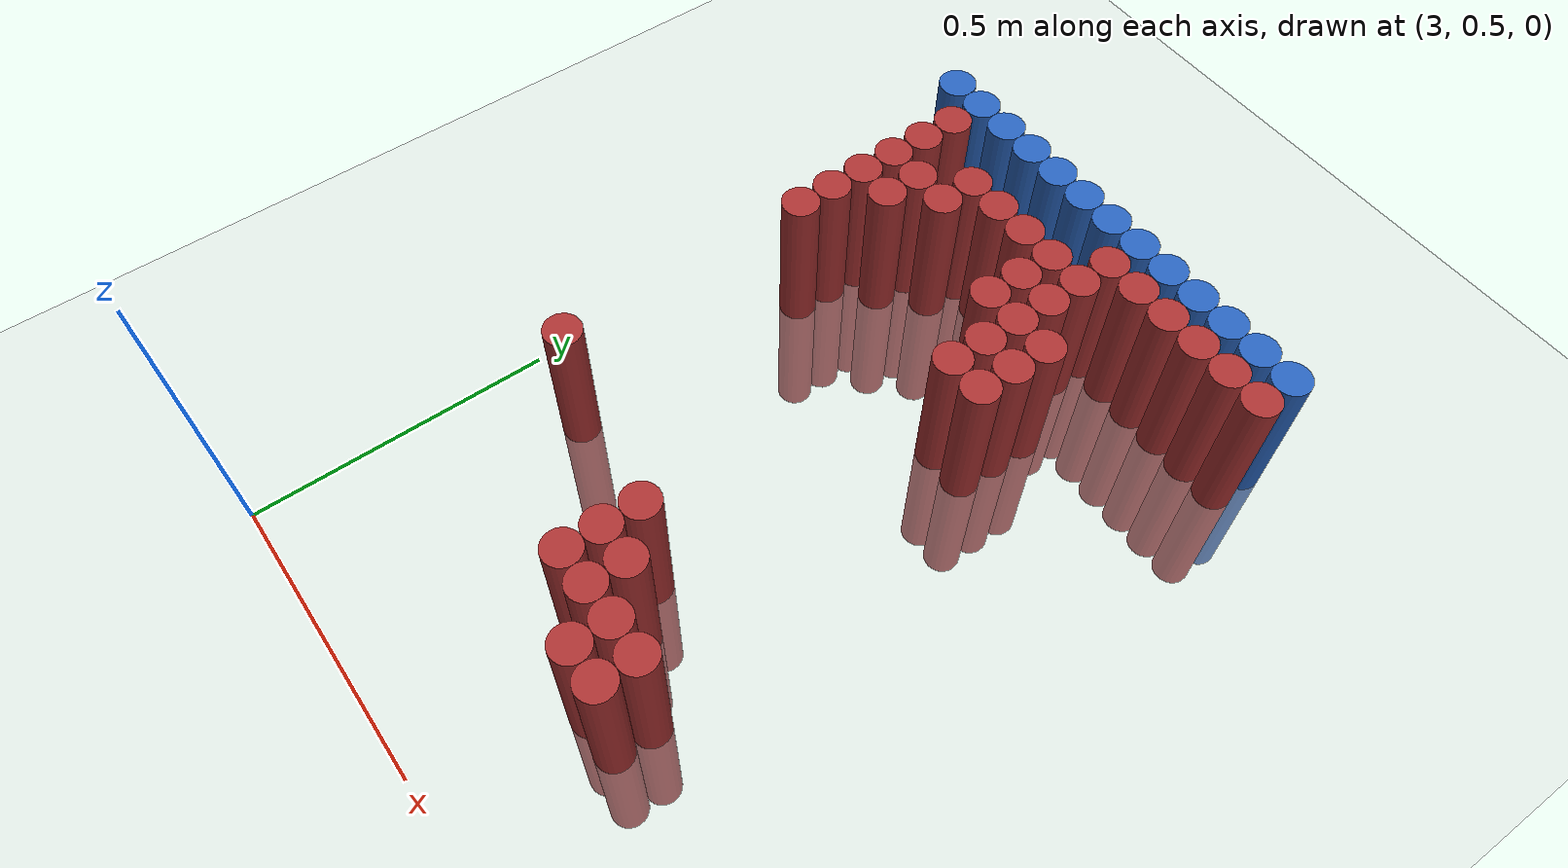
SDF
<sdf version="1.6">
 <world name="default">
  <model name="ground_plane">
   <static>1</static>
   <link name="link">
    <collision name="collision">
     <geometry><plane><normal>0 0 1</normal><size>100 100</size></plane></geometry>
     <surface><friction><ode><mu>100</mu><mu2>50</mu2></ode></friction></surface>
    </collision>
    <visual name="visual">
     <cast_shadows>0</cast_shadows>
     <geometry><plane><normal>0 0 1</normal><size>100 100</size></plane></geometry>
     <material>
      <script><uri>file://media/materials/scripts/gazebo.material</uri><name>Gazebo/Grey</name></script>
     </material>
    </visual>
   </link>
  </model>
  <model name="unit_cylinder_112">
   <static>1</static>
   <pose>3.090000 1.770000 0.000000 0.000000 0.000000 0.000000</pose>
   <link name="link">
    <inertial>
     <mass>1</mass>
     <inertia><ixx>0.145833</ixx><ixy>0</ixy><ixz>0</ixz><iyy>0.145833</iyy><iyz>0</iyz><izz>0.125</izz></inertia>
    </inertial>
    <collision name="collision">
     <geometry><cylinder><radius>0.030000</radius><length>0.5</length></cylinder></geometry>
    </collision>
    <visual name="visual">
     <geometry><cylinder><radius>0.030000</radius><length>0.5</length></cylinder></geometry>
     <material>
      <ambient>0.152000 0.379000 0.720000 1</ambient>
      <diffuse>0.152000 0.379000 0.720000 1</diffuse>
     </material>
     <material>
      <script><name>Gazebo/Grey</name><uri>file://media/materials/scripts/gazebo.material</uri></script>
     </material>
    </visual>
   </link>
  </model>
  <model name="unit_cylinder_113">
   <static>1</static>
   <pose>3.150000 1.770000 0.000000 0.000000 0.000000 0.000000</pose>
   <link name="link">
    <inertial>
     <mass>1</mass>
     <inertia><ixx>0.145833</ixx><ixy>0</ixy><ixz>0</ixz><iyy>0.145833</iyy><iyz>0</iyz><izz>0.125</izz></inertia>
    </inertial>
    <collision name="collision">
     <geometry><cylinder><radius>0.030000</radius><length>0.5</length></cylinder></geometry>
    </collision>
    <visual name="visual">
     <geometry><cylinder><radius>0.030000</radius><length>0.5</length></cylinder></geometry>
     <material>
      <ambient>0.152000 0.379000 0.720000 1</ambient>
      <diffuse>0.152000 0.379000 0.720000 1</diffuse>
     </material>
     <material>
      <script><name>Gazebo/Grey</name><uri>file://media/materials/scripts/gazebo.material</uri></script>
     </material>
    </visual>
   </link>
  </model>
  <model name="unit_cylinder_114">
   <static>1</static>
   <pose>3.210000 1.770000 0.000000 0.000000 0.000000 0.000000</pose>
   <link name="link">
    <inertial>
     <mass>1</mass>
     <inertia><ixx>0.145833</ixx><ixy>0</ixy><ixz>0</ixz><iyy>0.145833</iyy><iyz>0</iyz><izz>0.125</izz></inertia>
    </inertial>
    <collision name="collision">
     <geometry><cylinder><radius>0.030000</radius><length>0.5</length></cylinder></geometry>
    </collision>
    <visual name="visual">
     <geometry><cylinder><radius>0.030000</radius><length>0.5</length></cylinder></geometry>
     <material>
      <ambient>0.152000 0.379000 0.720000 1</ambient>
      <diffuse>0.152000 0.379000 0.720000 1</diffuse>
     </material>
     <material>
      <script><name>Gazebo/Grey</name><uri>file://media/materials/scripts/gazebo.material</uri></script>
     </material>
    </visual>
   </link>
  </model>
  <model name="unit_cylinder_115">
   <static>1</static>
   <pose>3.270000 1.770000 0.000000 0.000000 0.000000 0.000000</pose>
   <link name="link">
    <inertial>
     <mass>1</mass>
     <inertia><ixx>0.145833</ixx><ixy>0</ixy><ixz>0</ixz><iyy>0.145833</iyy><iyz>0</iyz><izz>0.125</izz></inertia>
    </inertial>
    <collision name="collision">
     <geometry><cylinder><radius>0.030000</radius><length>0.5</length></cylinder></geometry>
    </collision>
    <visual name="visual">
     <geometry><cylinder><radius>0.030000</radius><length>0.5</length></cylinder></geometry>
     <material>
      <ambient>0.152000 0.379000 0.720000 1</ambient>
      <diffuse>0.152000 0.379000 0.720000 1</diffuse>
     </material>
     <material>
      <script><name>Gazebo/Grey</name><uri>file://media/materials/scripts/gazebo.material</uri></script>
     </material>
    </visual>
   </link>
  </model>
  <model name="unit_cylinder_116">
   <static>1</static>
   <pose>3.330000 1.770000 0.000000 0.000000 0.000000 0.000000</pose>
   <link name="link">
    <inertial>
     <mass>1</mass>
     <inertia><ixx>0.145833</ixx><ixy>0</ixy><ixz>0</ixz><iyy>0.145833</iyy><iyz>0</iyz><izz>0.125</izz></inertia>
    </inertial>
    <collision name="collision">
     <geometry><cylinder><radius>0.030000</radius><length>0.5</length></cylinder></geometry>
    </collision>
    <visual name="visual">
     <geometry><cylinder><radius>0.030000</radius><length>0.5</length></cylinder></geometry>
     <material>
      <ambient>0.152000 0.379000 0.720000 1</ambient>
      <diffuse>0.152000 0.379000 0.720000 1</diffuse>
     </material>
     <material>
      <script><name>Gazebo/Grey</name><uri>file://media/materials/scripts/gazebo.material</uri></script>
     </material>
    </visual>
   </link>
  </model>
  <model name="unit_cylinder_117">
   <static>1</static>
   <pose>3.390000 1.770000 0.000000 0.000000 0.000000 0.000000</pose>
   <link name="link">
    <inertial>
     <mass>1</mass>
     <inertia><ixx>0.145833</ixx><ixy>0</ixy><ixz>0</ixz><iyy>0.145833</iyy><iyz>0</iyz><izz>0.125</izz></inertia>
    </inertial>
    <collision name="collision">
     <geometry><cylinder><radius>0.030000</radius><length>0.5</length></cylinder></geometry>
    </collision>
    <visual name="visual">
     <geometry><cylinder><radius>0.030000</radius><length>0.5</length></cylinder></geometry>
     <material>
      <ambient>0.152000 0.379000 0.720000 1</ambient>
      <diffuse>0.152000 0.379000 0.720000 1</diffuse>
     </material>
     <material>
      <script><name>Gazebo/Grey</name><uri>file://media/materials/scripts/gazebo.material</uri></script>
     </material>
    </visual>
   </link>
  </model>
  <model name="unit_cylinder_118">
   <static>1</static>
   <pose>3.450000 1.770000 0.000000 0.000000 0.000000 0.000000</pose>
   <link name="link">
    <inertial>
     <mass>1</mass>
     <inertia><ixx>0.145833</ixx><ixy>0</ixy><ixz>0</ixz><iyy>0.145833</iyy><iyz>0</iyz><izz>0.125</izz></inertia>
    </inertial>
    <collision name="collision">
     <geometry><cylinder><radius>0.030000</radius><length>0.5</length></cylinder></geometry>
    </collision>
    <visual name="visual">
     <geometry><cylinder><radius>0.030000</radius><length>0.5</length></cylinder></geometry>
     <material>
      <ambient>0.152000 0.379000 0.720000 1</ambient>
      <diffuse>0.152000 0.379000 0.720000 1</diffuse>
     </material>
     <material>
      <script><name>Gazebo/Grey</name><uri>file://media/materials/scripts/gazebo.material</uri></script>
     </material>
    </visual>
   </link>
  </model>
  <model name="unit_cylinder_119">
   <static>1</static>
   <pose>3.510000 1.770000 0.000000 0.000000 0.000000 0.000000</pose>
   <link name="link">
    <inertial>
     <mass>1</mass>
     <inertia><ixx>0.145833</ixx><ixy>0</ixy><ixz>0</ixz><iyy>0.145833</iyy><iyz>0</iyz><izz>0.125</izz></inertia>
    </inertial>
    <collision name="collision">
     <geometry><cylinder><radius>0.030000</radius><length>0.5</length></cylinder></geometry>
    </collision>
    <visual name="visual">
     <geometry><cylinder><radius>0.030000</radius><length>0.5</length></cylinder></geometry>
     <material>
      <ambient>0.152000 0.379000 0.720000 1</ambient>
      <diffuse>0.152000 0.379000 0.720000 1</diffuse>
     </material>
     <material>
      <script><name>Gazebo/Grey</name><uri>file://media/materials/scripts/gazebo.material</uri></script>
     </material>
    </visual>
   </link>
  </model>
  <model name="unit_cylinder_120">
   <static>1</static>
   <pose>3.570000 1.770000 0.000000 0.000000 0.000000 0.000000</pose>
   <link name="link">
    <inertial>
     <mass>1</mass>
     <inertia><ixx>0.145833</ixx><ixy>0</ixy><ixz>0</ixz><iyy>0.145833</iyy><iyz>0</iyz><izz>0.125</izz></inertia>
    </inertial>
    <collision name="collision">
     <geometry><cylinder><radius>0.030000</radius><length>0.5</length></cylinder></geometry>
    </collision>
    <visual name="visual">
     <geometry><cylinder><radius>0.030000</radius><length>0.5</length></cylinder></geometry>
     <material>
      <ambient>0.152000 0.379000 0.720000 1</ambient>
      <diffuse>0.152000 0.379000 0.720000 1</diffuse>
     </material>
     <material>
      <script><name>Gazebo/Grey</name><uri>file://media/materials/scripts/gazebo.material</uri></script>
     </material>
    </visual>
   </link>
  </model>
  <model name="unit_cylinder_121">
   <static>1</static>
   <pose>3.630000 1.770000 0.000000 0.000000 0.000000 0.000000</pose>
   <link name="link">
    <inertial>
     <mass>1</mass>
     <inertia><ixx>0.145833</ixx><ixy>0</ixy><ixz>0</ixz><iyy>0.145833</iyy><iyz>0</iyz><izz>0.125</izz></inertia>
    </inertial>
    <collision name="collision">
     <geometry><cylinder><radius>0.030000</radius><length>0.5</length></cylinder></geometry>
    </collision>
    <visual name="visual">
     <geometry><cylinder><radius>0.030000</radius><length>0.5</length></cylinder></geometry>
     <material>
      <ambient>0.152000 0.379000 0.720000 1</ambient>
      <diffuse>0.152000 0.379000 0.720000 1</diffuse>
     </material>
     <material>
      <script><name>Gazebo/Grey</name><uri>file://media/materials/scripts/gazebo.material</uri></script>
     </material>
    </visual>
   </link>
  </model>
  <model name="unit_cylinder_122">
   <static>1</static>
   <pose>3.690000 1.770000 0.000000 0.000000 0.000000 0.000000</pose>
   <link name="link">
    <inertial>
     <mass>1</mass>
     <inertia><ixx>0.145833</ixx><ixy>0</ixy><ixz>0</ixz><iyy>0.145833</iyy><iyz>0</iyz><izz>0.125</izz></inertia>
    </inertial>
    <collision name="collision">
     <geometry><cylinder><radius>0.030000</radius><length>0.5</length></cylinder></geometry>
    </collision>
    <visual name="visual">
     <geometry><cylinder><radius>0.030000</radius><length>0.5</length></cylinder></geometry>
     <material>
      <ambient>0.152000 0.379000 0.720000 1</ambient>
      <diffuse>0.152000 0.379000 0.720000 1</diffuse>
     </material>
     <material>
      <script><name>Gazebo/Grey</name><uri>file://media/materials/scripts/gazebo.material</uri></script>
     </material>
    </visual>
   </link>
  </model>
  <model name="unit_cylinder_123">
   <static>1</static>
   <pose>3.750000 1.770000 0.000000 0.000000 0.000000 0.000000</pose>
   <link name="link">
    <inertial>
     <mass>1</mass>
     <inertia><ixx>0.145833</ixx><ixy>0</ixy><ixz>0</ixz><iyy>0.145833</iyy><iyz>0</iyz><izz>0.125</izz></inertia>
    </inertial>
    <collision name="collision">
     <geometry><cylinder><radius>0.030000</radius><length>0.5</length></cylinder></geometry>
    </collision>
    <visual name="visual">
     <geometry><cylinder><radius>0.030000</radius><length>0.5</length></cylinder></geometry>
     <material>
      <ambient>0.152000 0.379000 0.720000 1</ambient>
      <diffuse>0.152000 0.379000 0.720000 1</diffuse>
     </material>
     <material>
      <script><name>Gazebo/Grey</name><uri>file://media/materials/scripts/gazebo.material</uri></script>
     </material>
    </visual>
   </link>
  </model>
  <model name="unit_cylinder_124">
   <static>1</static>
   <pose>3.810000 1.770000 0.000000 0.000000 0.000000 0.000000</pose>
   <link name="link">
    <inertial>
     <mass>1</mass>
     <inertia><ixx>0.145833</ixx><ixy>0</ixy><ixz>0</ixz><iyy>0.145833</iyy><iyz>0</iyz><izz>0.125</izz></inertia>
    </inertial>
    <collision name="collision">
     <geometry><cylinder><radius>0.030000</radius><length>0.5</length></cylinder></geometry>
    </collision>
    <visual name="visual">
     <geometry><cylinder><radius>0.030000</radius><length>0.5</length></cylinder></geometry>
     <material>
      <ambient>0.152000 0.379000 0.720000 1</ambient>
      <diffuse>0.152000 0.379000 0.720000 1</diffuse>
     </material>
     <material>
      <script><name>Gazebo/Grey</name><uri>file://media/materials/scripts/gazebo.material</uri></script>
     </material>
    </visual>
   </link>
  </model>
  <model name="unit_cylinder_134">
   <static>1</static>
   <pose>3.150000 1.710000 0.000000 0.000000 0.000000 0.000000</pose>
   <link name="link">
    <inertial>
     <mass>1</mass>
     <inertia><ixx>0.145833</ixx><ixy>0</ixy><ixz>0</ixz><iyy>0.145833</iyy><iyz>0</iyz><izz>0.125</izz></inertia>
    </inertial>
    <collision name="collision">
     <geometry><cylinder><radius>0.030000</radius><length>0.5</length></cylinder></geometry>
    </collision>
    <visual name="visual">
     <geometry><cylinder><radius>0.030000</radius><length>0.5</length></cylinder></geometry>
     <material>
      <ambient>0.648000 0.192000 0.192000 1</ambient>
      <diffuse>0.648000 0.192000 0.192000 1</diffuse>
     </material>
     <material>
      <script><name>Gazebo/Grey</name><uri>file://media/materials/scripts/gazebo.material</uri></script>
     </material>
    </visual>
   </link>
  </model>
  <model name="unit_cylinder_135">
   <static>1</static>
   <pose>3.510000 1.710000 0.000000 0.000000 0.000000 0.000000</pose>
   <link name="link">
    <inertial>
     <mass>1</mass>
     <inertia><ixx>0.145833</ixx><ixy>0</ixy><ixz>0</ixz><iyy>0.145833</iyy><iyz>0</iyz><izz>0.125</izz></inertia>
    </inertial>
    <collision name="collision">
     <geometry><cylinder><radius>0.030000</radius><length>0.5</length></cylinder></geometry>
    </collision>
    <visual name="visual">
     <geometry><cylinder><radius>0.030000</radius><length>0.5</length></cylinder></geometry>
     <material>
      <ambient>0.648000 0.192000 0.192000 1</ambient>
      <diffuse>0.648000 0.192000 0.192000 1</diffuse>
     </material>
     <material>
      <script><name>Gazebo/Grey</name><uri>file://media/materials/scripts/gazebo.material</uri></script>
     </material>
    </visual>
   </link>
  </model>
  <model name="unit_cylinder_136">
   <static>1</static>
   <pose>3.570000 1.710000 0.000000 0.000000 0.000000 0.000000</pose>
   <link name="link">
    <inertial>
     <mass>1</mass>
     <inertia><ixx>0.145833</ixx><ixy>0</ixy><ixz>0</ixz><iyy>0.145833</iyy><iyz>0</iyz><izz>0.125</izz></inertia>
    </inertial>
    <collision name="collision">
     <geometry><cylinder><radius>0.030000</radius><length>0.5</length></cylinder></geometry>
    </collision>
    <visual name="visual">
     <geometry><cylinder><radius>0.030000</radius><length>0.5</length></cylinder></geometry>
     <material>
      <ambient>0.648000 0.192000 0.192000 1</ambient>
      <diffuse>0.648000 0.192000 0.192000 1</diffuse>
     </material>
     <material>
      <script><name>Gazebo/Grey</name><uri>file://media/materials/scripts/gazebo.material</uri></script>
     </material>
    </visual>
   </link>
  </model>
  <model name="unit_cylinder_137">
   <static>1</static>
   <pose>3.630000 1.710000 0.000000 0.000000 0.000000 0.000000</pose>
   <link name="link">
    <inertial>
     <mass>1</mass>
     <inertia><ixx>0.145833</ixx><ixy>0</ixy><ixz>0</ixz><iyy>0.145833</iyy><iyz>0</iyz><izz>0.125</izz></inertia>
    </inertial>
    <collision name="collision">
     <geometry><cylinder><radius>0.030000</radius><length>0.5</length></cylinder></geometry>
    </collision>
    <visual name="visual">
     <geometry><cylinder><radius>0.030000</radius><length>0.5</length></cylinder></geometry>
     <material>
      <ambient>0.648000 0.192000 0.192000 1</ambient>
      <diffuse>0.648000 0.192000 0.192000 1</diffuse>
     </material>
     <material>
      <script><name>Gazebo/Grey</name><uri>file://media/materials/scripts/gazebo.material</uri></script>
     </material>
    </visual>
   </link>
  </model>
  <model name="unit_cylinder_138">
   <static>1</static>
   <pose>3.690000 1.710000 0.000000 0.000000 0.000000 0.000000</pose>
   <link name="link">
    <inertial>
     <mass>1</mass>
     <inertia><ixx>0.145833</ixx><ixy>0</ixy><ixz>0</ixz><iyy>0.145833</iyy><iyz>0</iyz><izz>0.125</izz></inertia>
    </inertial>
    <collision name="collision">
     <geometry><cylinder><radius>0.030000</radius><length>0.5</length></cylinder></geometry>
    </collision>
    <visual name="visual">
     <geometry><cylinder><radius>0.030000</radius><length>0.5</length></cylinder></geometry>
     <material>
      <ambient>0.648000 0.192000 0.192000 1</ambient>
      <diffuse>0.648000 0.192000 0.192000 1</diffuse>
     </material>
     <material>
      <script><name>Gazebo/Grey</name><uri>file://media/materials/scripts/gazebo.material</uri></script>
     </material>
    </visual>
   </link>
  </model>
  <model name="unit_cylinder_139">
   <static>1</static>
   <pose>3.750000 1.710000 0.000000 0.000000 0.000000 0.000000</pose>
   <link name="link">
    <inertial>
     <mass>1</mass>
     <inertia><ixx>0.145833</ixx><ixy>0</ixy><ixz>0</ixz><iyy>0.145833</iyy><iyz>0</iyz><izz>0.125</izz></inertia>
    </inertial>
    <collision name="collision">
     <geometry><cylinder><radius>0.030000</radius><length>0.5</length></cylinder></geometry>
    </collision>
    <visual name="visual">
     <geometry><cylinder><radius>0.030000</radius><length>0.5</length></cylinder></geometry>
     <material>
      <ambient>0.648000 0.192000 0.192000 1</ambient>
      <diffuse>0.648000 0.192000 0.192000 1</diffuse>
     </material>
     <material>
      <script><name>Gazebo/Grey</name><uri>file://media/materials/scripts/gazebo.material</uri></script>
     </material>
    </visual>
   </link>
  </model>
  <model name="unit_cylinder_140">
   <static>1</static>
   <pose>3.810000 1.710000 0.000000 0.000000 0.000000 0.000000</pose>
   <link name="link">
    <inertial>
     <mass>1</mass>
     <inertia><ixx>0.145833</ixx><ixy>0</ixy><ixz>0</ixz><iyy>0.145833</iyy><iyz>0</iyz><izz>0.125</izz></inertia>
    </inertial>
    <collision name="collision">
     <geometry><cylinder><radius>0.030000</radius><length>0.5</length></cylinder></geometry>
    </collision>
    <visual name="visual">
     <geometry><cylinder><radius>0.030000</radius><length>0.5</length></cylinder></geometry>
     <material>
      <ambient>0.648000 0.192000 0.192000 1</ambient>
      <diffuse>0.648000 0.192000 0.192000 1</diffuse>
     </material>
     <material>
      <script><name>Gazebo/Grey</name><uri>file://media/materials/scripts/gazebo.material</uri></script>
     </material>
    </visual>
   </link>
  </model>
  <model name="unit_cylinder_146">
   <static>1</static>
   <pose>3.150000 1.650000 0.000000 0.000000 0.000000 0.000000</pose>
   <link name="link">
    <inertial>
     <mass>1</mass>
     <inertia><ixx>0.145833</ixx><ixy>0</ixy><ixz>0</ixz><iyy>0.145833</iyy><iyz>0</iyz><izz>0.125</izz></inertia>
    </inertial>
    <collision name="collision">
     <geometry><cylinder><radius>0.030000</radius><length>0.5</length></cylinder></geometry>
    </collision>
    <visual name="visual">
     <geometry><cylinder><radius>0.030000</radius><length>0.5</length></cylinder></geometry>
     <material>
      <ambient>0.648000 0.192000 0.192000 1</ambient>
      <diffuse>0.648000 0.192000 0.192000 1</diffuse>
     </material>
     <material>
      <script><name>Gazebo/Grey</name><uri>file://media/materials/scripts/gazebo.material</uri></script>
     </material>
    </visual>
   </link>
  </model>
  <model name="unit_cylinder_147">
   <static>1</static>
   <pose>3.270000 1.650000 0.000000 0.000000 0.000000 0.000000</pose>
   <link name="link">
    <inertial>
     <mass>1</mass>
     <inertia><ixx>0.145833</ixx><ixy>0</ixy><ixz>0</ixz><iyy>0.145833</iyy><iyz>0</iyz><izz>0.125</izz></inertia>
    </inertial>
    <collision name="collision">
     <geometry><cylinder><radius>0.030000</radius><length>0.5</length></cylinder></geometry>
    </collision>
    <visual name="visual">
     <geometry><cylinder><radius>0.030000</radius><length>0.5</length></cylinder></geometry>
     <material>
      <ambient>0.648000 0.192000 0.192000 1</ambient>
      <diffuse>0.648000 0.192000 0.192000 1</diffuse>
     </material>
     <material>
      <script><name>Gazebo/Grey</name><uri>file://media/materials/scripts/gazebo.material</uri></script>
     </material>
    </visual>
   </link>
  </model>
  <model name="unit_cylinder_148">
   <static>1</static>
   <pose>3.330000 1.650000 0.000000 0.000000 0.000000 0.000000</pose>
   <link name="link">
    <inertial>
     <mass>1</mass>
     <inertia><ixx>0.145833</ixx><ixy>0</ixy><ixz>0</ixz><iyy>0.145833</iyy><iyz>0</iyz><izz>0.125</izz></inertia>
    </inertial>
    <collision name="collision">
     <geometry><cylinder><radius>0.030000</radius><length>0.5</length></cylinder></geometry>
    </collision>
    <visual name="visual">
     <geometry><cylinder><radius>0.030000</radius><length>0.5</length></cylinder></geometry>
     <material>
      <ambient>0.648000 0.192000 0.192000 1</ambient>
      <diffuse>0.648000 0.192000 0.192000 1</diffuse>
     </material>
     <material>
      <script><name>Gazebo/Grey</name><uri>file://media/materials/scripts/gazebo.material</uri></script>
     </material>
    </visual>
   </link>
  </model>
  <model name="unit_cylinder_149">
   <static>1</static>
   <pose>3.390000 1.650000 0.000000 0.000000 0.000000 0.000000</pose>
   <link name="link">
    <inertial>
     <mass>1</mass>
     <inertia><ixx>0.145833</ixx><ixy>0</ixy><ixz>0</ixz><iyy>0.145833</iyy><iyz>0</iyz><izz>0.125</izz></inertia>
    </inertial>
    <collision name="collision">
     <geometry><cylinder><radius>0.030000</radius><length>0.5</length></cylinder></geometry>
    </collision>
    <visual name="visual">
     <geometry><cylinder><radius>0.030000</radius><length>0.5</length></cylinder></geometry>
     <material>
      <ambient>0.648000 0.192000 0.192000 1</ambient>
      <diffuse>0.648000 0.192000 0.192000 1</diffuse>
     </material>
     <material>
      <script><name>Gazebo/Grey</name><uri>file://media/materials/scripts/gazebo.material</uri></script>
     </material>
    </visual>
   </link>
  </model>
  <model name="unit_cylinder_150">
   <static>1</static>
   <pose>3.450000 1.650000 0.000000 0.000000 0.000000 0.000000</pose>
   <link name="link">
    <inertial>
     <mass>1</mass>
     <inertia><ixx>0.145833</ixx><ixy>0</ixy><ixz>0</ixz><iyy>0.145833</iyy><iyz>0</iyz><izz>0.125</izz></inertia>
    </inertial>
    <collision name="collision">
     <geometry><cylinder><radius>0.030000</radius><length>0.5</length></cylinder></geometry>
    </collision>
    <visual name="visual">
     <geometry><cylinder><radius>0.030000</radius><length>0.5</length></cylinder></geometry>
     <material>
      <ambient>0.648000 0.192000 0.192000 1</ambient>
      <diffuse>0.648000 0.192000 0.192000 1</diffuse>
     </material>
     <material>
      <script><name>Gazebo/Grey</name><uri>file://media/materials/scripts/gazebo.material</uri></script>
     </material>
    </visual>
   </link>
  </model>
  <model name="unit_cylinder_151">
   <static>1</static>
   <pose>3.510000 1.650000 0.000000 0.000000 0.000000 0.000000</pose>
   <link name="link">
    <inertial>
     <mass>1</mass>
     <inertia><ixx>0.145833</ixx><ixy>0</ixy><ixz>0</ixz><iyy>0.145833</iyy><iyz>0</iyz><izz>0.125</izz></inertia>
    </inertial>
    <collision name="collision">
     <geometry><cylinder><radius>0.030000</radius><length>0.5</length></cylinder></geometry>
    </collision>
    <visual name="visual">
     <geometry><cylinder><radius>0.030000</radius><length>0.5</length></cylinder></geometry>
     <material>
      <ambient>0.648000 0.192000 0.192000 1</ambient>
      <diffuse>0.648000 0.192000 0.192000 1</diffuse>
     </material>
     <material>
      <script><name>Gazebo/Grey</name><uri>file://media/materials/scripts/gazebo.material</uri></script>
     </material>
    </visual>
   </link>
  </model>
  <model name="unit_cylinder_156">
   <static>1</static>
   <pose>3.150000 1.590000 0.000000 0.000000 0.000000 0.000000</pose>
   <link name="link">
    <inertial>
     <mass>1</mass>
     <inertia><ixx>0.145833</ixx><ixy>0</ixy><ixz>0</ixz><iyy>0.145833</iyy><iyz>0</iyz><izz>0.125</izz></inertia>
    </inertial>
    <collision name="collision">
     <geometry><cylinder><radius>0.030000</radius><length>0.5</length></cylinder></geometry>
    </collision>
    <visual name="visual">
     <geometry><cylinder><radius>0.030000</radius><length>0.5</length></cylinder></geometry>
     <material>
      <ambient>0.648000 0.192000 0.192000 1</ambient>
      <diffuse>0.648000 0.192000 0.192000 1</diffuse>
     </material>
     <material>
      <script><name>Gazebo/Grey</name><uri>file://media/materials/scripts/gazebo.material</uri></script>
     </material>
    </visual>
   </link>
  </model>
  <model name="unit_cylinder_157">
   <static>1</static>
   <pose>3.210000 1.590000 0.000000 0.000000 0.000000 0.000000</pose>
   <link name="link">
    <inertial>
     <mass>1</mass>
     <inertia><ixx>0.145833</ixx><ixy>0</ixy><ixz>0</ixz><iyy>0.145833</iyy><iyz>0</iyz><izz>0.125</izz></inertia>
    </inertial>
    <collision name="collision">
     <geometry><cylinder><radius>0.030000</radius><length>0.5</length></cylinder></geometry>
    </collision>
    <visual name="visual">
     <geometry><cylinder><radius>0.030000</radius><length>0.5</length></cylinder></geometry>
     <material>
      <ambient>0.648000 0.192000 0.192000 1</ambient>
      <diffuse>0.648000 0.192000 0.192000 1</diffuse>
     </material>
     <material>
      <script><name>Gazebo/Grey</name><uri>file://media/materials/scripts/gazebo.material</uri></script>
     </material>
    </visual>
   </link>
  </model>
  <model name="unit_cylinder_158">
   <static>1</static>
   <pose>3.270000 1.590000 0.000000 0.000000 0.000000 0.000000</pose>
   <link name="link">
    <inertial>
     <mass>1</mass>
     <inertia><ixx>0.145833</ixx><ixy>0</ixy><ixz>0</ixz><iyy>0.145833</iyy><iyz>0</iyz><izz>0.125</izz></inertia>
    </inertial>
    <collision name="collision">
     <geometry><cylinder><radius>0.030000</radius><length>0.5</length></cylinder></geometry>
    </collision>
    <visual name="visual">
     <geometry><cylinder><radius>0.030000</radius><length>0.5</length></cylinder></geometry>
     <material>
      <ambient>0.648000 0.192000 0.192000 1</ambient>
      <diffuse>0.648000 0.192000 0.192000 1</diffuse>
     </material>
     <material>
      <script><name>Gazebo/Grey</name><uri>file://media/materials/scripts/gazebo.material</uri></script>
     </material>
    </visual>
   </link>
  </model>
  <model name="unit_cylinder_159">
   <static>1</static>
   <pose>3.450000 1.590000 0.000000 0.000000 0.000000 0.000000</pose>
   <link name="link">
    <inertial>
     <mass>1</mass>
     <inertia><ixx>0.145833</ixx><ixy>0</ixy><ixz>0</ixz><iyy>0.145833</iyy><iyz>0</iyz><izz>0.125</izz></inertia>
    </inertial>
    <collision name="collision">
     <geometry><cylinder><radius>0.030000</radius><length>0.5</length></cylinder></geometry>
    </collision>
    <visual name="visual">
     <geometry><cylinder><radius>0.030000</radius><length>0.5</length></cylinder></geometry>
     <material>
      <ambient>0.648000 0.192000 0.192000 1</ambient>
      <diffuse>0.648000 0.192000 0.192000 1</diffuse>
     </material>
     <material>
      <script><name>Gazebo/Grey</name><uri>file://media/materials/scripts/gazebo.material</uri></script>
     </material>
    </visual>
   </link>
  </model>
  <model name="unit_cylinder_160">
   <static>1</static>
   <pose>3.510000 1.590000 0.000000 0.000000 0.000000 0.000000</pose>
   <link name="link">
    <inertial>
     <mass>1</mass>
     <inertia><ixx>0.145833</ixx><ixy>0</ixy><ixz>0</ixz><iyy>0.145833</iyy><iyz>0</iyz><izz>0.125</izz></inertia>
    </inertial>
    <collision name="collision">
     <geometry><cylinder><radius>0.030000</radius><length>0.5</length></cylinder></geometry>
    </collision>
    <visual name="visual">
     <geometry><cylinder><radius>0.030000</radius><length>0.5</length></cylinder></geometry>
     <material>
      <ambient>0.648000 0.192000 0.192000 1</ambient>
      <diffuse>0.648000 0.192000 0.192000 1</diffuse>
     </material>
     <material>
      <script><name>Gazebo/Grey</name><uri>file://media/materials/scripts/gazebo.material</uri></script>
     </material>
    </visual>
   </link>
  </model>
  <model name="unit_cylinder_163">
   <static>1</static>
   <pose>3.150000 1.530000 0.000000 0.000000 0.000000 0.000000</pose>
   <link name="link">
    <inertial>
     <mass>1</mass>
     <inertia><ixx>0.145833</ixx><ixy>0</ixy><ixz>0</ixz><iyy>0.145833</iyy><iyz>0</iyz><izz>0.125</izz></inertia>
    </inertial>
    <collision name="collision">
     <geometry><cylinder><radius>0.030000</radius><length>0.5</length></cylinder></geometry>
    </collision>
    <visual name="visual">
     <geometry><cylinder><radius>0.030000</radius><length>0.5</length></cylinder></geometry>
     <material>
      <ambient>0.648000 0.192000 0.192000 1</ambient>
      <diffuse>0.648000 0.192000 0.192000 1</diffuse>
     </material>
     <material>
      <script><name>Gazebo/Grey</name><uri>file://media/materials/scripts/gazebo.material</uri></script>
     </material>
    </visual>
   </link>
  </model>
  <model name="unit_cylinder_164">
   <static>1</static>
   <pose>3.210000 1.530000 0.000000 0.000000 0.000000 0.000000</pose>
   <link name="link">
    <inertial>
     <mass>1</mass>
     <inertia><ixx>0.145833</ixx><ixy>0</ixy><ixz>0</ixz><iyy>0.145833</iyy><iyz>0</iyz><izz>0.125</izz></inertia>
    </inertial>
    <collision name="collision">
     <geometry><cylinder><radius>0.030000</radius><length>0.5</length></cylinder></geometry>
    </collision>
    <visual name="visual">
     <geometry><cylinder><radius>0.030000</radius><length>0.5</length></cylinder></geometry>
     <material>
      <ambient>0.648000 0.192000 0.192000 1</ambient>
      <diffuse>0.648000 0.192000 0.192000 1</diffuse>
     </material>
     <material>
      <script><name>Gazebo/Grey</name><uri>file://media/materials/scripts/gazebo.material</uri></script>
     </material>
    </visual>
   </link>
  </model>
  <model name="unit_cylinder_165">
   <static>1</static>
   <pose>3.450000 1.530000 0.000000 0.000000 0.000000 0.000000</pose>
   <link name="link">
    <inertial>
     <mass>1</mass>
     <inertia><ixx>0.145833</ixx><ixy>0</ixy><ixz>0</ixz><iyy>0.145833</iyy><iyz>0</iyz><izz>0.125</izz></inertia>
    </inertial>
    <collision name="collision">
     <geometry><cylinder><radius>0.030000</radius><length>0.5</length></cylinder></geometry>
    </collision>
    <visual name="visual">
     <geometry><cylinder><radius>0.030000</radius><length>0.5</length></cylinder></geometry>
     <material>
      <ambient>0.648000 0.192000 0.192000 1</ambient>
      <diffuse>0.648000 0.192000 0.192000 1</diffuse>
     </material>
     <material>
      <script><name>Gazebo/Grey</name><uri>file://media/materials/scripts/gazebo.material</uri></script>
     </material>
    </visual>
   </link>
  </model>
  <model name="unit_cylinder_166">
   <static>1</static>
   <pose>3.510000 1.530000 0.000000 0.000000 0.000000 0.000000</pose>
   <link name="link">
    <inertial>
     <mass>1</mass>
     <inertia><ixx>0.145833</ixx><ixy>0</ixy><ixz>0</ixz><iyy>0.145833</iyy><iyz>0</iyz><izz>0.125</izz></inertia>
    </inertial>
    <collision name="collision">
     <geometry><cylinder><radius>0.030000</radius><length>0.5</length></cylinder></geometry>
    </collision>
    <visual name="visual">
     <geometry><cylinder><radius>0.030000</radius><length>0.5</length></cylinder></geometry>
     <material>
      <ambient>0.648000 0.192000 0.192000 1</ambient>
      <diffuse>0.648000 0.192000 0.192000 1</diffuse>
     </material>
     <material>
      <script><name>Gazebo/Grey</name><uri>file://media/materials/scripts/gazebo.material</uri></script>
     </material>
    </visual>
   </link>
  </model>
  <model name="unit_cylinder_167">
   <static>1</static>
   <pose>3.570000 1.530000 0.000000 0.000000 0.000000 0.000000</pose>
   <link name="link">
    <inertial>
     <mass>1</mass>
     <inertia><ixx>0.145833</ixx><ixy>0</ixy><ixz>0</ixz><iyy>0.145833</iyy><iyz>0</iyz><izz>0.125</izz></inertia>
    </inertial>
    <collision name="collision">
     <geometry><cylinder><radius>0.030000</radius><length>0.5</length></cylinder></geometry>
    </collision>
    <visual name="visual">
     <geometry><cylinder><radius>0.030000</radius><length>0.5</length></cylinder></geometry>
     <material>
      <ambient>0.648000 0.192000 0.192000 1</ambient>
      <diffuse>0.648000 0.192000 0.192000 1</diffuse>
     </material>
     <material>
      <script><name>Gazebo/Grey</name><uri>file://media/materials/scripts/gazebo.material</uri></script>
     </material>
    </visual>
   </link>
  </model>
  <model name="unit_cylinder_173">
   <static>1</static>
   <pose>3.150000 1.470000 0.000000 0.000000 0.000000 0.000000</pose>
   <link name="link">
    <inertial>
     <mass>1</mass>
     <inertia><ixx>0.145833</ixx><ixy>0</ixy><ixz>0</ixz><iyy>0.145833</iyy><iyz>0</iyz><izz>0.125</izz></inertia>
    </inertial>
    <collision name="collision">
     <geometry><cylinder><radius>0.030000</radius><length>0.5</length></cylinder></geometry>
    </collision>
    <visual name="visual">
     <geometry><cylinder><radius>0.030000</radius><length>0.5</length></cylinder></geometry>
     <material>
      <ambient>0.648000 0.192000 0.192000 1</ambient>
      <diffuse>0.648000 0.192000 0.192000 1</diffuse>
     </material>
     <material>
      <script><name>Gazebo/Grey</name><uri>file://media/materials/scripts/gazebo.material</uri></script>
     </material>
    </visual>
   </link>
  </model>
  <model name="unit_cylinder_174">
   <static>1</static>
   <pose>3.510000 1.470000 0.000000 0.000000 0.000000 0.000000</pose>
   <link name="link">
    <inertial>
     <mass>1</mass>
     <inertia><ixx>0.145833</ixx><ixy>0</ixy><ixz>0</ixz><iyy>0.145833</iyy><iyz>0</iyz><izz>0.125</izz></inertia>
    </inertial>
    <collision name="collision">
     <geometry><cylinder><radius>0.030000</radius><length>0.5</length></cylinder></geometry>
    </collision>
    <visual name="visual">
     <geometry><cylinder><radius>0.030000</radius><length>0.5</length></cylinder></geometry>
     <material>
      <ambient>0.648000 0.192000 0.192000 1</ambient>
      <diffuse>0.648000 0.192000 0.192000 1</diffuse>
     </material>
     <material>
      <script><name>Gazebo/Grey</name><uri>file://media/materials/scripts/gazebo.material</uri></script>
     </material>
    </visual>
   </link>
  </model>
  <model name="unit_cylinder_175">
   <static>1</static>
   <pose>3.570000 1.470000 0.000000 0.000000 0.000000 0.000000</pose>
   <link name="link">
    <inertial>
     <mass>1</mass>
     <inertia><ixx>0.145833</ixx><ixy>0</ixy><ixz>0</ixz><iyy>0.145833</iyy><iyz>0</iyz><izz>0.125</izz></inertia>
    </inertial>
    <collision name="collision">
     <geometry><cylinder><radius>0.030000</radius><length>0.5</length></cylinder></geometry>
    </collision>
    <visual name="visual">
     <geometry><cylinder><radius>0.030000</radius><length>0.5</length></cylinder></geometry>
     <material>
      <ambient>0.648000 0.192000 0.192000 1</ambient>
      <diffuse>0.648000 0.192000 0.192000 1</diffuse>
     </material>
     <material>
      <script><name>Gazebo/Grey</name><uri>file://media/materials/scripts/gazebo.material</uri></script>
     </material>
    </visual>
   </link>
  </model>
  <model name="unit_cylinder_180">
   <static>1</static>
   <pose>3.150000 1.410000 0.000000 0.000000 0.000000 0.000000</pose>
   <link name="link">
    <inertial>
     <mass>1</mass>
     <inertia><ixx>0.145833</ixx><ixy>0</ixy><ixz>0</ixz><iyy>0.145833</iyy><iyz>0</iyz><izz>0.125</izz></inertia>
    </inertial>
    <collision name="collision">
     <geometry><cylinder><radius>0.030000</radius><length>0.5</length></cylinder></geometry>
    </collision>
    <visual name="visual">
     <geometry><cylinder><radius>0.030000</radius><length>0.5</length></cylinder></geometry>
     <material>
      <ambient>0.648000 0.192000 0.192000 1</ambient>
      <diffuse>0.648000 0.192000 0.192000 1</diffuse>
     </material>
     <material>
      <script><name>Gazebo/Grey</name><uri>file://media/materials/scripts/gazebo.material</uri></script>
     </material>
    </visual>
   </link>
  </model>
  <model name="unit_cylinder_181">
   <static>1</static>
   <pose>3.510000 1.410000 0.000000 0.000000 0.000000 0.000000</pose>
   <link name="link">
    <inertial>
     <mass>1</mass>
     <inertia><ixx>0.145833</ixx><ixy>0</ixy><ixz>0</ixz><iyy>0.145833</iyy><iyz>0</iyz><izz>0.125</izz></inertia>
    </inertial>
    <collision name="collision">
     <geometry><cylinder><radius>0.030000</radius><length>0.5</length></cylinder></geometry>
    </collision>
    <visual name="visual">
     <geometry><cylinder><radius>0.030000</radius><length>0.5</length></cylinder></geometry>
     <material>
      <ambient>0.648000 0.192000 0.192000 1</ambient>
      <diffuse>0.648000 0.192000 0.192000 1</diffuse>
     </material>
     <material>
      <script><name>Gazebo/Grey</name><uri>file://media/materials/scripts/gazebo.material</uri></script>
     </material>
    </visual>
   </link>
  </model>
  <model name="unit_cylinder_182">
   <static>1</static>
   <pose>3.570000 1.410000 0.000000 0.000000 0.000000 0.000000</pose>
   <link name="link">
    <inertial>
     <mass>1</mass>
     <inertia><ixx>0.145833</ixx><ixy>0</ixy><ixz>0</ixz><iyy>0.145833</iyy><iyz>0</iyz><izz>0.125</izz></inertia>
    </inertial>
    <collision name="collision">
     <geometry><cylinder><radius>0.030000</radius><length>0.5</length></cylinder></geometry>
    </collision>
    <visual name="visual">
     <geometry><cylinder><radius>0.030000</radius><length>0.5</length></cylinder></geometry>
     <material>
      <ambient>0.648000 0.192000 0.192000 1</ambient>
      <diffuse>0.648000 0.192000 0.192000 1</diffuse>
     </material>
     <material>
      <script><name>Gazebo/Grey</name><uri>file://media/materials/scripts/gazebo.material</uri></script>
     </material>
    </visual>
   </link>
  </model>
  <model name="unit_cylinder_191">
   <static>1</static>
   <pose>3.150000 0.990000 0.000000 0.000000 0.000000 0.000000</pose>
   <link name="link">
    <inertial>
     <mass>1</mass>
     <inertia><ixx>0.145833</ixx><ixy>0</ixy><ixz>0</ixz><iyy>0.145833</iyy><iyz>0</iyz><izz>0.125</izz></inertia>
    </inertial>
    <collision name="collision">
     <geometry><cylinder><radius>0.030000</radius><length>0.5</length></cylinder></geometry>
    </collision>
    <visual name="visual">
     <geometry><cylinder><radius>0.030000</radius><length>0.5</length></cylinder></geometry>
     <material>
      <ambient>0.648000 0.192000 0.192000 1</ambient>
      <diffuse>0.648000 0.192000 0.192000 1</diffuse>
     </material>
     <material>
      <script><name>Gazebo/Grey</name><uri>file://media/materials/scripts/gazebo.material</uri></script>
     </material>
    </visual>
   </link>
  </model>
  <model name="unit_cylinder_195">
   <static>1</static>
   <pose>3.450000 0.930000 0.000000 0.000000 0.000000 0.000000</pose>
   <link name="link">
    <inertial>
     <mass>1</mass>
     <inertia><ixx>0.145833</ixx><ixy>0</ixy><ixz>0</ixz><iyy>0.145833</iyy><iyz>0</iyz><izz>0.125</izz></inertia>
    </inertial>
    <collision name="collision">
     <geometry><cylinder><radius>0.030000</radius><length>0.5</length></cylinder></geometry>
    </collision>
    <visual name="visual">
     <geometry><cylinder><radius>0.030000</radius><length>0.5</length></cylinder></geometry>
     <material>
      <ambient>0.648000 0.192000 0.192000 1</ambient>
      <diffuse>0.648000 0.192000 0.192000 1</diffuse>
     </material>
     <material>
      <script><name>Gazebo/Grey</name><uri>file://media/materials/scripts/gazebo.material</uri></script>
     </material>
    </visual>
   </link>
  </model>
  <model name="unit_cylinder_200">
   <static>1</static>
   <pose>3.450000 0.870000 0.000000 0.000000 0.000000 0.000000</pose>
   <link name="link">
    <inertial>
     <mass>1</mass>
     <inertia><ixx>0.145833</ixx><ixy>0</ixy><ixz>0</ixz><iyy>0.145833</iyy><iyz>0</iyz><izz>0.125</izz></inertia>
    </inertial>
    <collision name="collision">
     <geometry><cylinder><radius>0.030000</radius><length>0.5</length></cylinder></geometry>
    </collision>
    <visual name="visual">
     <geometry><cylinder><radius>0.030000</radius><length>0.5</length></cylinder></geometry>
     <material>
      <ambient>0.648000 0.192000 0.192000 1</ambient>
      <diffuse>0.648000 0.192000 0.192000 1</diffuse>
     </material>
     <material>
      <script><name>Gazebo/Grey</name><uri>file://media/materials/scripts/gazebo.material</uri></script>
     </material>
    </visual>
   </link>
  </model>
  <model name="unit_cylinder_201">
   <static>1</static>
   <pose>3.510000 0.870000 0.000000 0.000000 0.000000 0.000000</pose>
   <link name="link">
    <inertial>
     <mass>1</mass>
     <inertia><ixx>0.145833</ixx><ixy>0</ixy><ixz>0</ixz><iyy>0.145833</iyy><iyz>0</iyz><izz>0.125</izz></inertia>
    </inertial>
    <collision name="collision">
     <geometry><cylinder><radius>0.030000</radius><length>0.5</length></cylinder></geometry>
    </collision>
    <visual name="visual">
     <geometry><cylinder><radius>0.030000</radius><length>0.5</length></cylinder></geometry>
     <material>
      <ambient>0.648000 0.192000 0.192000 1</ambient>
      <diffuse>0.648000 0.192000 0.192000 1</diffuse>
     </material>
     <material>
      <script><name>Gazebo/Grey</name><uri>file://media/materials/scripts/gazebo.material</uri></script>
     </material>
    </visual>
   </link>
  </model>
  <model name="unit_cylinder_206">
   <static>1</static>
   <pose>3.450000 0.810000 0.000000 0.000000 0.000000 0.000000</pose>
   <link name="link">
    <inertial>
     <mass>1</mass>
     <inertia><ixx>0.145833</ixx><ixy>0</ixy><ixz>0</ixz><iyy>0.145833</iyy><iyz>0</iyz><izz>0.125</izz></inertia>
    </inertial>
    <collision name="collision">
     <geometry><cylinder><radius>0.030000</radius><length>0.5</length></cylinder></geometry>
    </collision>
    <visual name="visual">
     <geometry><cylinder><radius>0.030000</radius><length>0.5</length></cylinder></geometry>
     <material>
      <ambient>0.648000 0.192000 0.192000 1</ambient>
      <diffuse>0.648000 0.192000 0.192000 1</diffuse>
     </material>
     <material>
      <script><name>Gazebo/Grey</name><uri>file://media/materials/scripts/gazebo.material</uri></script>
     </material>
    </visual>
   </link>
  </model>
  <model name="unit_cylinder_207">
   <static>1</static>
   <pose>3.510000 0.810000 0.000000 0.000000 0.000000 0.000000</pose>
   <link name="link">
    <inertial>
     <mass>1</mass>
     <inertia><ixx>0.145833</ixx><ixy>0</ixy><ixz>0</ixz><iyy>0.145833</iyy><iyz>0</iyz><izz>0.125</izz></inertia>
    </inertial>
    <collision name="collision">
     <geometry><cylinder><radius>0.030000</radius><length>0.5</length></cylinder></geometry>
    </collision>
    <visual name="visual">
     <geometry><cylinder><radius>0.030000</radius><length>0.5</length></cylinder></geometry>
     <material>
      <ambient>0.648000 0.192000 0.192000 1</ambient>
      <diffuse>0.648000 0.192000 0.192000 1</diffuse>
     </material>
     <material>
      <script><name>Gazebo/Grey</name><uri>file://media/materials/scripts/gazebo.material</uri></script>
     </material>
    </visual>
   </link>
  </model>
  <model name="unit_cylinder_208">
   <static>1</static>
   <pose>3.570000 0.810000 0.000000 0.000000 0.000000 0.000000</pose>
   <link name="link">
    <inertial>
     <mass>1</mass>
     <inertia><ixx>0.145833</ixx><ixy>0</ixy><ixz>0</ixz><iyy>0.145833</iyy><iyz>0</iyz><izz>0.125</izz></inertia>
    </inertial>
    <collision name="collision">
     <geometry><cylinder><radius>0.030000</radius><length>0.5</length></cylinder></geometry>
    </collision>
    <visual name="visual">
     <geometry><cylinder><radius>0.030000</radius><length>0.5</length></cylinder></geometry>
     <material>
      <ambient>0.648000 0.192000 0.192000 1</ambient>
      <diffuse>0.648000 0.192000 0.192000 1</diffuse>
     </material>
     <material>
      <script><name>Gazebo/Grey</name><uri>file://media/materials/scripts/gazebo.material</uri></script>
     </material>
    </visual>
   </link>
  </model>
  <model name="unit_cylinder_209">
   <static>1</static>
   <pose>3.630000 0.810000 0.000000 0.000000 0.000000 0.000000</pose>
   <link name="link">
    <inertial>
     <mass>1</mass>
     <inertia><ixx>0.145833</ixx><ixy>0</ixy><ixz>0</ixz><iyy>0.145833</iyy><iyz>0</iyz><izz>0.125</izz></inertia>
    </inertial>
    <collision name="collision">
     <geometry><cylinder><radius>0.030000</radius><length>0.5</length></cylinder></geometry>
    </collision>
    <visual name="visual">
     <geometry><cylinder><radius>0.030000</radius><length>0.5</length></cylinder></geometry>
     <material>
      <ambient>0.648000 0.192000 0.192000 1</ambient>
      <diffuse>0.648000 0.192000 0.192000 1</diffuse>
     </material>
     <material>
      <script><name>Gazebo/Grey</name><uri>file://media/materials/scripts/gazebo.material</uri></script>
     </material>
    </visual>
   </link>
  </model>
  <model name="unit_cylinder_218">
   <static>1</static>
   <pose>3.570000 0.750000 0.000000 0.000000 0.000000 0.000000</pose>
   <link name="link">
    <inertial>
     <mass>1</mass>
     <inertia><ixx>0.145833</ixx><ixy>0</ixy><ixz>0</ixz><iyy>0.145833</iyy><iyz>0</iyz><izz>0.125</izz></inertia>
    </inertial>
    <collision name="collision">
     <geometry><cylinder><radius>0.030000</radius><length>0.5</length></cylinder></geometry>
    </collision>
    <visual name="visual">
     <geometry><cylinder><radius>0.030000</radius><length>0.5</length></cylinder></geometry>
     <material>
      <ambient>0.648000 0.192000 0.192000 1</ambient>
      <diffuse>0.648000 0.192000 0.192000 1</diffuse>
     </material>
     <material>
      <script><name>Gazebo/Grey</name><uri>file://media/materials/scripts/gazebo.material</uri></script>
     </material>
    </visual>
   </link>
  </model>
  <model name="unit_cylinder_219">
   <static>1</static>
   <pose>3.630000 0.750000 0.000000 0.000000 0.000000 0.000000</pose>
   <link name="link">
    <inertial>
     <mass>1</mass>
     <inertia><ixx>0.145833</ixx><ixy>0</ixy><ixz>0</ixz><iyy>0.145833</iyy><iyz>0</iyz><izz>0.125</izz></inertia>
    </inertial>
    <collision name="collision">
     <geometry><cylinder><radius>0.030000</radius><length>0.5</length></cylinder></geometry>
    </collision>
    <visual name="visual">
     <geometry><cylinder><radius>0.030000</radius><length>0.5</length></cylinder></geometry>
     <material>
      <ambient>0.648000 0.192000 0.192000 1</ambient>
      <diffuse>0.648000 0.192000 0.192000 1</diffuse>
     </material>
     <material>
      <script><name>Gazebo/Grey</name><uri>file://media/materials/scripts/gazebo.material</uri></script>
     </material>
    </visual>
   </link>
  </model>
 </world>
</sdf>
